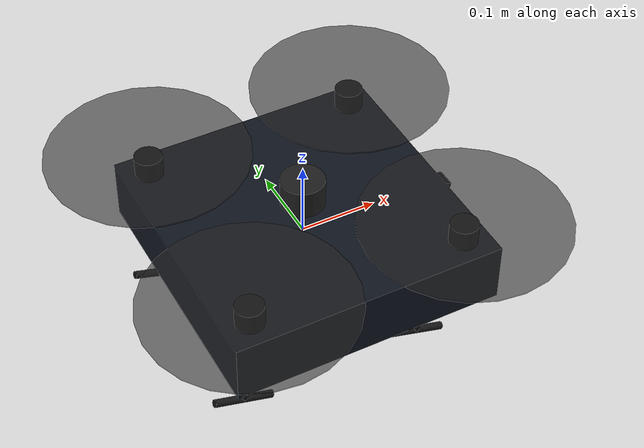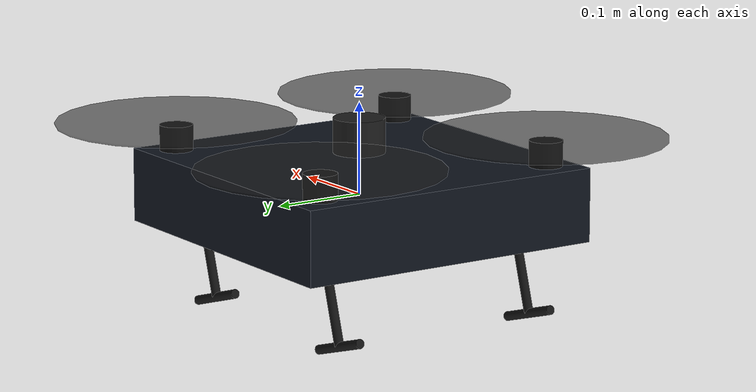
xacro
<?xml version="1.0"?>
<robot name="stealth_quad" xmlns:xacro="http://www.ros.org/wiki/xacro">

  <!-- PROPERTIES -->
  <xacro:property name="body_mass"   value="1.5"/>
  <xacro:property name="body_x"      value="0.35"/>
  <xacro:property name="body_y"      value="0.35"/>
  <xacro:property name="body_z"      value="0.08"/>
  <xacro:property name="arm_length"  value="0.20"/>
  <xacro:property name="arm_radius"  value="0.013"/>
  <xacro:property name="prop_radius" value="0.13"/>

  <!-- PHYSICS FOR BOX SHAPES -->
  <xacro:macro name="box_inertia" params="m x y z">
    <inertial>
      <mass value="${m}"/>
      <inertia
        ixx="${(1/12)*m*(y*y + z*z)}"  ixy="0.0" ixz="0.0"
        iyy="${(1/12)*m*(x*x + z*z)}"  iyz="0.0"
        izz="${(1/12)*m*(x*x + y*y)}"/>
    </inertial>
  </xacro:macro>

  <!-- PHYSICS FOR CYLINDERS -->

  <xacro:macro name="cylinder_inertia" params="m r h">
    <inertial>
      <mass value="${m}"/>
      <inertia
        ixx="${(1/12)*m*(3*r*r + h*h)}"  ixy="0.0" ixz="0.0"
        iyy="${(1/12)*m*(3*r*r + h*h)}"  iyz="0.0"
        izz="${0.5*m*r*r}"/>
    </inertial>
  </xacro:macro>

  <!-- MAIN BODY -->
  <link name="base_link">
    <xacro:box_inertia m="${body_mass}" x="${body_x}" y="${body_y}" z="${body_z}"/>
    <visual>
      <origin xyz="0 0 0" rpy="0 0 0"/>
      <geometry>
        <box size="${body_x} ${body_y} ${body_z}"/>
      </geometry>
      <material name="stealth_black">
        <color rgba="0.06 0.08 0.12 1.0"/>
      </material>
    </visual>
    <collision>
      <origin xyz="0 0 0" rpy="0 0 0"/>
      <geometry>
        <box size="${body_x} ${body_y} ${body_z}"/>
      </geometry>
    </collision>
  </link>

  <gazebo reference="base_link">
    <material>Gazebo/DarkGrey</material>
  </gazebo>

  <!-- ARM ASSEMBLY MACRO -->

  <xacro:macro name="arm_assembly" params="name angle_deg spin_dir">
    <xacro:property name="angle_rad" value="${angle_deg * 3.14159265 / 180.0}"/>
    <xacro:property name="tip_x"     value="${arm_length * cos(angle_rad)}"/>
    <xacro:property name="tip_y"     value="${arm_length * sin(angle_rad)}"/>
    <xacro:property name="mid_x"     value="${(arm_length/2) * cos(angle_rad)}"/>
    <xacro:property name="mid_y"     value="${(arm_length/2) * sin(angle_rad)}"/>

    <link name="arm_${name}">
      <inertial>
        <mass value="0.05"/>
        <inertia ixx="0.0001" ixy="0" ixz="0"
                 iyy="0.0001" iyz="0"
                 izz="0.0001"/>
      </inertial>
      <visual>
        <origin xyz="${mid_x} ${mid_y} 0" rpy="0 ${pi/2} ${angle_rad}"/>
        <geometry>
          <cylinder radius="${arm_radius}" length="${arm_length}"/>
        </geometry>
        <material name="arm_color">
          <color rgba="0.1 0.1 0.1 1.0"/>
        </material>
      </visual>
      <collision>
        <origin xyz="${mid_x} ${mid_y} 0" rpy="0 ${pi/2} ${angle_rad}"/>
        <geometry>
          <cylinder radius="${arm_radius}" length="${arm_length}"/>
        </geometry>
      </collision>
    </link>

    <joint name="joint_arm_${name}" type="fixed">
      <parent link="base_link"/>
      <child  link="arm_${name}"/>
      <origin xyz="0 0 0" rpy="0 0 0"/>
    </joint>

    <gazebo reference="arm_${name}">
      <material>Gazebo/DarkGrey</material>
    </gazebo>

    <link name="motor_${name}">
      <inertial>
        <mass value="0.06"/>
        <inertia ixx="0.0001" ixy="0" ixz="0"
                 iyy="0.0001" iyz="0"
                 izz="0.0001"/>
      </inertial>
      <visual>
        <origin xyz="0 0 0" rpy="0 0 0"/>
        <geometry>
          <cylinder radius="0.018" length="0.028"/>
        </geometry>
        <material name="motor_dark">
        <color rgba="0.05 0.05 0.05 1.0"/>
        </material>
      </visual>
      <collision>
        <origin xyz="0 0 0" rpy="0 0 0"/>
        <geometry>
          <cylinder radius="0.018" length="0.028"/>
        </geometry>
      </collision>
    </link>

    <joint name="joint_motor_${name}" type="fixed">
      <parent link="arm_${name}"/>
      <child  link="motor_${name}"/>
      <origin xyz="${tip_x} ${tip_y} ${body_z/2 + 0.014}" rpy="0 0 0"/>
    </joint>

    <gazebo reference="motor_${name}">
      <material>Gazebo/Red</material>
    </gazebo>

    <link name="prop_${name}">
      <inertial>
        <mass value="0.025"/>
        <inertia ixx="0.00015" ixy="0" ixz="0"
                 iyy="0.00015" iyz="0"
                 izz="0.00028"/>
      </inertial>
      <visual>
        <origin xyz="0 0 0" rpy="0 0 0"/>
        <geometry>
          <cylinder radius="${prop_radius}" length="0.002"/>
        </geometry>
        <material name="prop_color">
          <color rgba="0.15 0.15 0.15 0.6"/>
        </material>
      </visual>
      <collision>
        <origin xyz="0 0 0" rpy="0 0 0"/>
        <geometry>
          <cylinder radius="${prop_radius}" length="0.006"/>
        </geometry>
      </collision>
    </link>

    <joint name="joint_prop_${name}" type="continuous">
      <parent link="motor_${name}"/>
      <child  link="prop_${name}"/>
      <origin xyz="0 0 0.017" rpy="0 0 0"/>
      <axis xyz="0 0 ${spin_dir}"/>
    </joint>

    <gazebo reference="prop_${name}">
      <material>Gazebo/FlatBlack</material>
    </gazebo>

  </xacro:macro>

  <!-- 4 ARMS -->
  <xacro:arm_assembly name="FL" angle_deg="45"  spin_dir="1"/>
  <xacro:arm_assembly name="FR" angle_deg="315" spin_dir="-1"/>
  <xacro:arm_assembly name="RL" angle_deg="135" spin_dir="-1"/>
  <xacro:arm_assembly name="RR" angle_deg="225" spin_dir="1"/>

  <!-- CAMERA -->
  <link name="camera_link">
    <inertial>
      <mass value="0.03"/>
      <inertia ixx="0.00001" ixy="0" ixz="0"
               iyy="0.00001" iyz="0"
               izz="0.00001"/>
    </inertial>
    <visual>
      <geometry>
        <box size="0.03 0.025 0.025"/>
      </geometry>
      <material name="camera_body">
        <color rgba="0.02 0.02 0.02 1.0"/>
      </material>
    </visual>
    <collision>
      <geometry>
        <box size="0.03 0.025 0.025"/>
      </geometry>
    </collision>
  </link>

  <joint name="camera_joint" type="fixed">
    <parent link="base_link"/>
    <child  link="camera_link"/>
    <origin xyz="${body_x/2 + 0.015} 0 -0.01" rpy="0 0.261 0"/>
  </joint>

  <gazebo reference="camera_link">
    <material>Gazebo/Black</material>
    <sensor type="camera" name="front_camera">
      <update_rate>30</update_rate>
      <camera name="head">
        <horizontal_fov>1.3962634</horizontal_fov>
        <image>
          <width>640</width>
          <height>480</height>
          <format>R8G8B8</format>
        </image>
        <clip><near>0.02</near><far>300</far></clip>
      </camera>
      <plugin name="camera_controller" filename="libgazebo_ros_camera.so">
        <ros>
          <namespace>/stealth_quad</namespace>
        </ros>
        <camera_name>front_camera</camera_name>
        <frame_name>camera_link</frame_name>
      </plugin>
    </sensor>
  </gazebo>

  <!-- LIDAR -->

  <link name="lidar_link">
    <inertial>
      <mass value="0.05"/>
      <inertia ixx="0.00001" ixy="0" ixz="0"
               iyy="0.00001" iyz="0"
               izz="0.00001"/>
    </inertial>
    <visual>
      <geometry>
        <cylinder radius="0.028" length="0.038"/>
      </geometry>
      <material name="lidar_body">
        <color rgba="0.12 0.12 0.12 1.0"/>
      </material>
    </visual>
    <collision>
      <geometry>
        <cylinder radius="0.028" length="0.038"/>
      </geometry>
    </collision>
  </link>

  <joint name="lidar_joint" type="fixed">
    <parent link="base_link"/>
    <child  link="lidar_link"/>
    <origin xyz="0 0 ${body_z/2 + 0.025}" rpy="0 0 0"/>
  </joint>

  <gazebo reference="lidar_link">
    <material>Gazebo/DarkGrey</material>
    <sensor type="ray" name="top_lidar">
      <pose>0 0 0 0 0 0</pose>
      <visualize>false</visualize>
      <update_rate>10</update_rate>
      <ray>
        <scan>
          <horizontal>
            <samples>360</samples>
            <resolution>1</resolution>
            <min_angle>-3.14159</min_angle>
            <max_angle>3.14159</max_angle>
          </horizontal>
        </scan>
        <range>
          <min>0.10</min>
          <max>30.0</max>
          <resolution>0.01</resolution>
        </range>
      </ray>
      <plugin name="lidar_controller" filename="libgazebo_ros_ray_sensor.so">
        <ros>
          <namespace>/stealth_quad</namespace>
          <remapping>~/out:=scan</remapping>
        </ros>
        <output_type>sensor_msgs/LaserScan</output_type>
        <frame_name>lidar_link</frame_name>
      </plugin>
    </sensor>
  </gazebo>

  <!-- IMU -->

  <link name="imu_link">
    <inertial>
      <mass value="0.005"/>
      <inertia ixx="0.000001" ixy="0" ixz="0"
               iyy="0.000001" iyz="0"
               izz="0.000001"/>
    </inertial>
    <visual>
      <geometry><box size="0.012 0.012 0.004"/></geometry>
      <material name="pcb_green">
        <color rgba="0.0 0.45 0.1 1.0"/>
      </material>
    </visual>
    <collision>
      <geometry><box size="0.012 0.012 0.004"/></geometry>
    </collision>
  </link>

  <joint name="imu_joint" type="fixed">
    <parent link="base_link"/>
    <child  link="imu_link"/>
    <origin xyz="0 0 0" rpy="0 0 0"/>
  </joint>

  <gazebo reference="imu_link">
    <sensor name="imu_sensor" type="imu">
      <always_on>true</always_on>
      <update_rate>200</update_rate>
      <plugin filename="libgazebo_ros_imu_sensor.so" name="imu_plugin">
        <ros>
          <namespace>/stealth_quad</namespace>
          <remapping>~/out:=imu/data</remapping>
        </ros>
        <initial_orientation_as_reference>false</initial_orientation_as_reference>
      </plugin>
    </sensor>
  </gazebo>

<!-- LANDING LEGS -->

  <xacro:macro name="landing_leg" params="prefix x_pos y_pos">

    <!-- Upper leg strut -->
    <link name="${prefix}_leg_upper">
      <visual>
        <origin xyz="0 0 -0.04" rpy="0 0 0"/>
        <geometry>
          <cylinder radius="0.005" length="0.08"/>
        </geometry>
        <material name="leg_color">
          <color rgba="0.08 0.08 0.08 1.0"/>
        </material>
      </visual>
      <collision>
        <origin xyz="0 0 -0.04" rpy="0 0 0"/>
        <geometry><cylinder radius="0.005" length="0.08"/></geometry>
      </collision>
      <inertial>
        <mass value="0.01"/>
        <inertia ixx="0.000001" iyy="0.000001" izz="0.000001"
                 ixy="0" ixz="0" iyz="0"/>
      </inertial>
    </link>

    <joint name="${prefix}_leg_upper_joint" type="fixed">
      <parent link="base_link"/>
      <child link="${prefix}_leg_upper"/>
      <origin xyz="${x_pos} ${y_pos} -0.04" rpy="0 0.3 0"/>
    </joint>

    <!-- Lower leg strut -->

    <link name="${prefix}_leg_foot">
      <visual>
        <origin xyz="0 0 0" rpy="0 ${pi/2} 0"/>
        <geometry>
          <cylinder radius="0.005" length="0.08"/>
        </geometry>
        <material name="leg_foot_color">
          <color rgba="0.08 0.08 0.08 1.0"/>
        </material>
      </visual>
      <collision>
        <origin xyz="0 0 0" rpy="0 ${pi/2} 0"/>
        <geometry><cylinder radius="0.005" length="0.08"/></geometry>
      </collision>
      <inertial>
        <mass value="0.01"/>
        <inertia ixx="0.000001" iyy="0.000001" izz="0.000001"
                 ixy="0" ixz="0" iyz="0"/>
      </inertial>
    </link>

    <joint name="${prefix}_leg_foot_joint" type="fixed">
      <parent link="${prefix}_leg_upper"/>
      <child link="${prefix}_leg_foot"/>
      <origin xyz="0 0 -0.08" rpy="0 0 0"/>
    </joint>

  </xacro:macro>

  <!-- Instantiate 4 legs -->

  <xacro:landing_leg prefix="fl" x_pos=" 0.12" y_pos=" 0.12"/>
  <xacro:landing_leg prefix="fr" x_pos=" 0.12" y_pos="-0.12"/>
  <xacro:landing_leg prefix="rl" x_pos="-0.12" y_pos=" 0.12"/>
  <xacro:landing_leg prefix="rr" x_pos="-0.12" y_pos="-0.12"/>
  <gazebo reference="fl_leg_upper"><material>Gazebo/Black</material></gazebo>
  <gazebo reference="fl_leg_foot"><material>Gazebo/Black</material></gazebo>
  <gazebo reference="fr_leg_upper"><material>Gazebo/Black</material></gazebo>
  <gazebo reference="fr_leg_foot"><material>Gazebo/Black</material></gazebo>
  <gazebo reference="rl_leg_upper"><material>Gazebo/Black</material></gazebo>
  <gazebo reference="rl_leg_foot"><material>Gazebo/Black</material></gazebo>
  <gazebo reference="rr_leg_upper"><material>Gazebo/Black</material></gazebo>
  <gazebo reference="rr_leg_foot"><material>Gazebo/Black</material></gazebo>
</robot>
